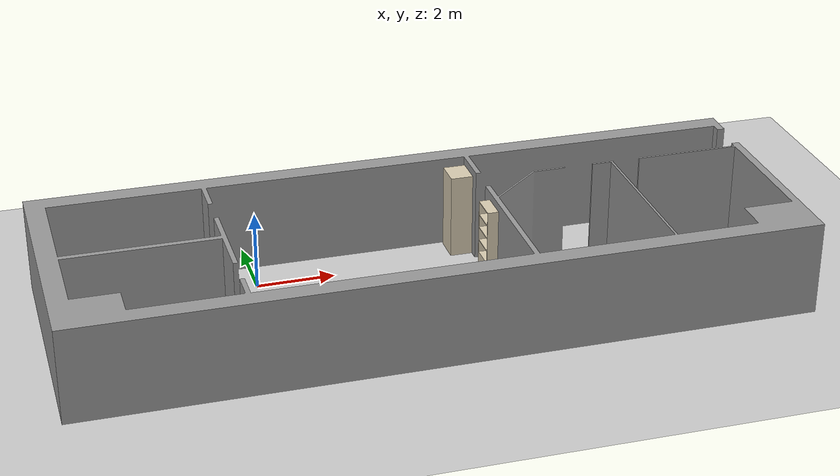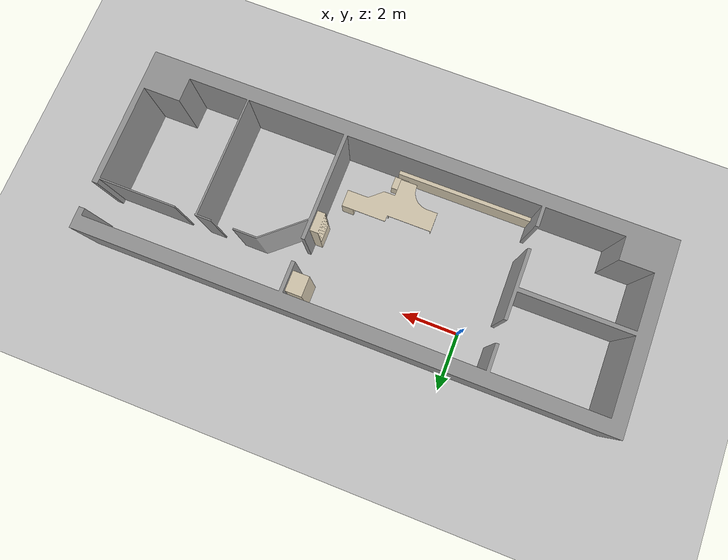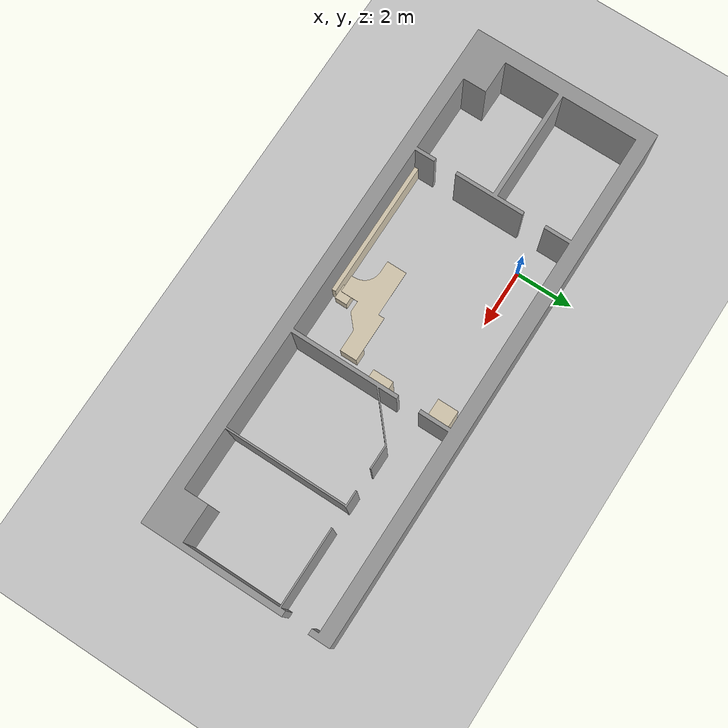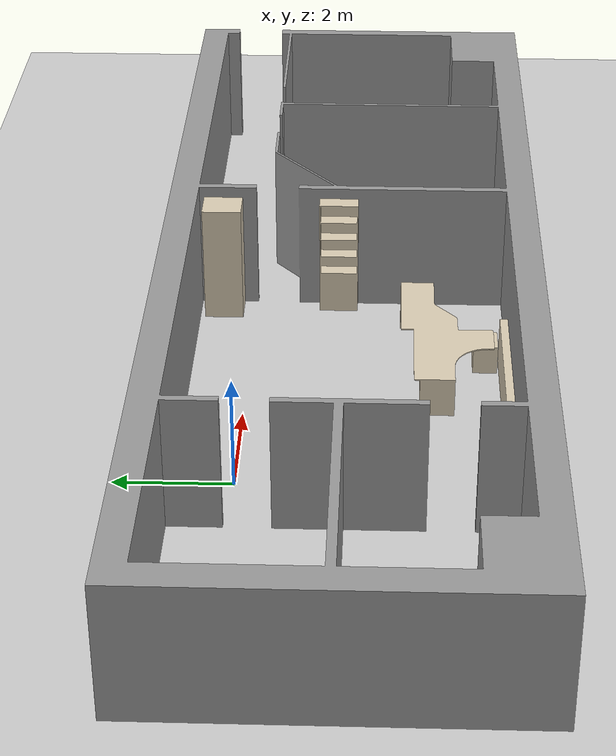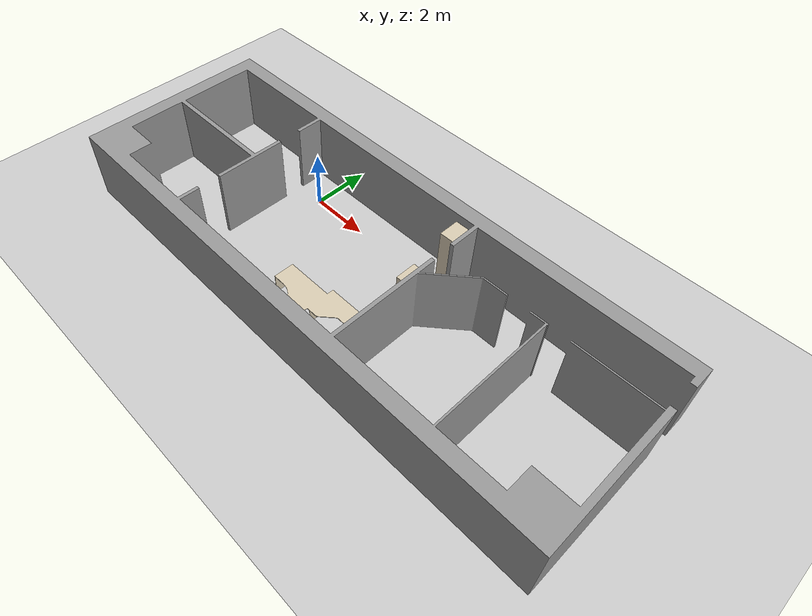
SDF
<?xml version="1.0" ?>
<sdf version="1.8">
  <world name="world_213">
    <physics name="1ms" type="ignored">
      <max_step_size>0.001</max_step_size>
      <real_time_factor>1.0</real_time_factor>
    </physics>
    <plugin filename="gz-sim-physics-system" name="gz::sim::systems::Physics"></plugin>
    <plugin filename="gz-sim-user-commands-system" name="gz::sim::systems::UserCommands"></plugin>
    <plugin filename="gz-sim-scene-broadcaster-system" name="gz::sim::systems::SceneBroadcaster"></plugin>

    <light type="directional" name="sun">
      <cast_shadows>true</cast_shadows>
      <pose>0 0 10 0 0 0</pose>
      <diffuse>0.8 0.8 0.8 1</diffuse>
      <specular>0.2 0.2 0.2 1</specular>
      <direction>-0.5 0.1 -0.9</direction>
    </light>

    <model name="ground_plane">
      <static>true</static>
      <pose>7.8 19.4 0.0 0 0 0</pose>
      <link name="link">
        <collision name="collision">
          <geometry><plane><normal>0 0 1</normal><size>40 75</size></plane></geometry>
        </collision>
        <visual name="visual">
          <geometry><plane><normal>0 0 1</normal><size>40 74.4</size></plane></geometry>
          <material><ambient>0.8 0.8 0.8 1</ambient><diffuse>0.8 0.8 0.8 1</diffuse></material>
        </visual>
      </link>
    </model>

    <model name="room_213_environment">
      <static>true</static>
      <pose>0 0 0 0 0 0</pose>
      <link name="environment_link">

        <collision name="213_wall_collision">
          <geometry><mesh><uri>file:///home/oleksandr/ros2_ws/src/fcm_project/fcm_digital_twin/worlds/213_Meshes/213_wall.stl</uri></mesh></geometry>
          <surface>
            <friction>
              <ode>
                <mu>10</mu>
                <mu2>10</mu2>
              </ode>
            </friction>
          </surface>
        </collision>
        <visual name="213_wall_visual">
          <geometry><mesh><uri>file:///home/oleksandr/ros2_ws/src/fcm_project/fcm_digital_twin/worlds/213_Meshes/213_wall.stl</uri></mesh></geometry>
          <material><ambient>0.6 0.6 0.6 1</ambient><diffuse>0.6 0.6 0.6 1</diffuse></material>
        </visual>

        <collision name="213_table_collision">
          <geometry><mesh><uri>file:///home/oleksandr/ros2_ws/src/fcm_project/fcm_digital_twin/worlds/213_Meshes/213_table.stl</uri></mesh></geometry>
          <surface>
            <friction>
              <ode>
                <mu>10</mu>
                <mu2>10</mu2>
              </ode>
            </friction>
          </surface>
        </collision>
        <visual name="213_table_visual">
          <geometry><mesh><uri>file:///home/oleksandr/ros2_ws/src/fcm_project/fcm_digital_twin/worlds/213_Meshes/213_table.stl</uri></mesh></geometry>
          <material><ambient>0.85 0.80 0.70 1</ambient><diffuse>0.85 0.80 0.70 1</diffuse></material>
        </visual>

        <collision name="213_cabinet_collision">
          <geometry><mesh><uri>file:///home/oleksandr/ros2_ws/src/fcm_project/fcm_digital_twin/worlds/213_Meshes/213_cabinet.stl</uri></mesh></geometry>
          <surface>
            <friction>
              <ode>
                <mu>10</mu>
                <mu2>10</mu2>
              </ode>
            </friction>
          </surface>
        </collision>
        <visual name="213_cabinet_visual">
          <geometry><mesh><uri>file:///home/oleksandr/ros2_ws/src/fcm_project/fcm_digital_twin/worlds/213_Meshes/213_cabinet.stl</uri></mesh></geometry>
          <material><ambient>0.85 0.80 0.70 1</ambient><diffuse>0.85 0.80 0.70 1</diffuse></material>
        </visual>

        <collision name="213_shelf_collision">
          <geometry><mesh><uri>file:///home/oleksandr/ros2_ws/src/fcm_project/fcm_digital_twin/worlds/213_Meshes/213_shelf.stl</uri></mesh></geometry>
          <surface>
            <friction>
              <ode>
                <mu>10</mu>
                <mu2>10</mu2>
              </ode>
            </friction>
          </surface>
        </collision>
        <visual name="213_shelf_visual">
          <geometry><mesh><uri>file:///home/oleksandr/ros2_ws/src/fcm_project/fcm_digital_twin/worlds/213_Meshes/213_shelf.stl</uri></mesh></geometry>
          <material><ambient>0.85 0.80 0.70 1</ambient><diffuse>0.85 0.80 0.70 1</diffuse></material>
        </visual>

        <collision name="213_battery_cover_collision">
          <geometry><mesh><uri>file:///home/oleksandr/ros2_ws/src/fcm_project/fcm_digital_twin/worlds/213_Meshes/213_battery_cover.stl</uri></mesh></geometry>
          <surface>
            <friction>
              <ode>
                <mu>10</mu>
                <mu2>10</mu2>
              </ode>
            </friction>
          </surface>
        </collision>
        <visual name="213_battery_cover_visual">
          <geometry><mesh><uri>file:///home/oleksandr/ros2_ws/src/fcm_project/fcm_digital_twin/worlds/213_Meshes/213_battery_cover.stl</uri></mesh></geometry>
          <material><ambient>0.85 0.80 0.70 1</ambient><diffuse>0.85 0.80 0.70 1</diffuse></material>
        </visual>

        <collision name="213_smal_cabinet_collision">
          <geometry><mesh><uri>file:///home/oleksandr/ros2_ws/src/fcm_project/fcm_digital_twin/worlds/213_Meshes/213_smal_cabinet.stl</uri></mesh></geometry>
          <surface>
            <friction>
              <ode>
                <mu>10</mu>
                <mu2>10</mu2>
              </ode>
            </friction>
          </surface>
        </collision>
        <visual name="213_smal_cabinet_visual">
          <geometry><mesh><uri>file:///home/oleksandr/ros2_ws/src/fcm_project/fcm_digital_twin/worlds/213_Meshes/213_smal_cabinet.stl</uri></mesh></geometry>
          <material><ambient>0.85 0.80 0.70 1</ambient><diffuse>0.85 0.80 0.70 1</diffuse></material>
        </visual>
      </link>
    </model>
  </world>
</sdf>
